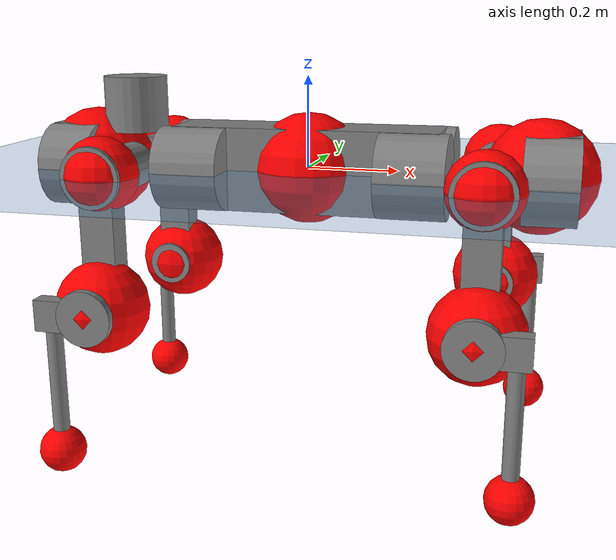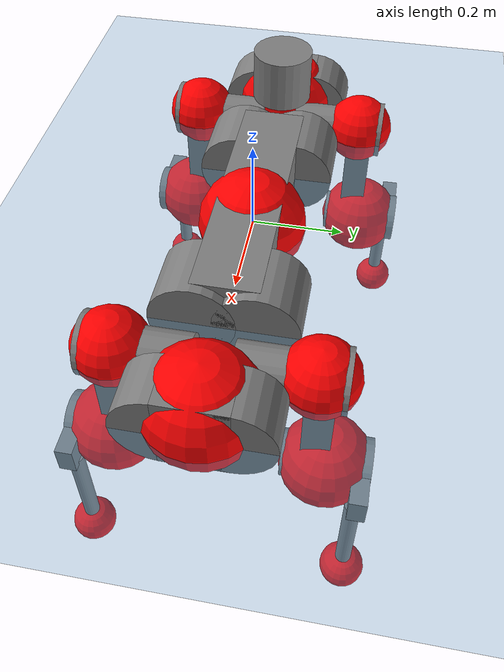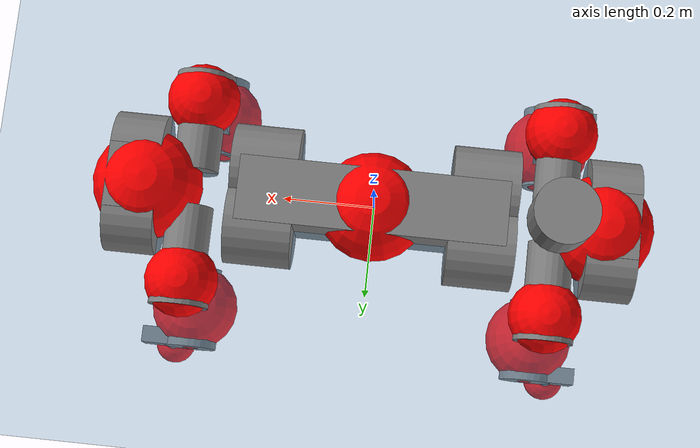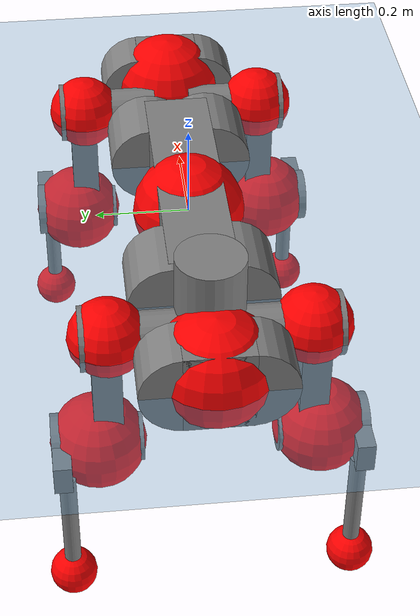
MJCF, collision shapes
<mujoco model="anymal_c">
  <compiler angle="radian" assetdir="assets" balanceinertia="true" inertiafromgeom="false"/>

  <option timestep="0.005" density="1.2" viscosity="2e-05"/>

  <size nkey="1"/>

  <visual>
    <quality shadowsize="8192"/>
    <map shadowclip="0.5"/>
  </visual>

  <default>
    <default class="/">
      <material specular="0" shininess="0.25"/>
      <geom contype="0" conaffinity="0" group="1" solref="-1000 -80"/>
      <site size="0.01 0.005 0.005" group="5"/>
      <general forcelimited="true" forcerange="-80 80" biastype="affine" gainprm="80" biasprm="0 -80 -2"/>
      <default class="anymal_c">
        <joint armature="0.01" damping="0.01" frictionloss="0.1"/>
        <default class="visual">
          <geom type="mesh" group="2"/>
          <default class="visual_zflip"/>
        </default>
        <default class="collision">
          <geom type="cylinder" group="3"/>
          <default class="foot">
            <geom size="0.03 0 0" type="sphere" condim="6" priority="1" friction="0.8 0.02 0.01" solimp="0.015 1 0.03"/>
          </default>
        </default>
      </default>
      <default class="reward_collision_sphere">
        <geom group="5" rgba="1 0 0 1"/>
      </default>
    </default>
  </default>

  <asset>
    <texture type="skybox" colorspace="auto" name="//unnamed_texture_0" builtin="gradient" rgb1="0.95 0.95 0.95" rgb2="0.95 0.95 0.95" width="100" height="600"/>
    <texture type="2d" colorspace="auto" name="texplane" builtin="checker" rgb1="0.345 0.575 0.748" rgb2="0.345 0.575 0.748" markrgb="1 1 1" width="512" height="512"/>
    <texture type="2d" colorspace="linear" name="base" file="base.png"/>
    <texture type="2d" colorspace="linear" name="top_shell" file="top_shell.png"/>
    <texture type="2d" colorspace="linear" name="bottom_shell" file="bottom_shell.png"/>
    <texture type="2d" colorspace="linear" name="remote" file="remote.png"/>
    <texture type="2d" colorspace="linear" name="hatch" file="hatch.png"/>
    <texture type="2d" colorspace="linear" name="handle" file="handle.png"/>
    <texture type="2d" colorspace="linear" name="face" file="face.png"/>
    <texture type="2d" colorspace="linear" name="battery" file="battery.png"/>
    <texture type="2d" colorspace="linear" name="lidar_cage" file="lidar_cage.png"/>
    <texture type="2d" colorspace="linear" name="depth_camera" file="depth_camera.png"/>
    <texture type="2d" colorspace="linear" name="wide_angle_camera" file="wide_angle_camera.png"/>
    <texture type="2d" colorspace="linear" name="lidar" file="lidar.png"/>
    <texture type="2d" colorspace="linear" name="drive" file="drive.png"/>
    <texture type="2d" colorspace="linear" name="hip_l" file="hip_l.png"/>
    <texture type="2d" colorspace="linear" name="shank_l" file="shank_l.png"/>
    <texture type="2d" colorspace="linear" name="foot" file="foot.png"/>
    <texture type="2d" colorspace="linear" name="thigh" file="thigh.png"/>
    <texture type="2d" colorspace="linear" name="shank_r" file="shank_r.png"/>
    <texture type="2d" colorspace="linear" name="hip_r" file="hip_r.png"/>
    <material name="MatPlane" class="/" texture="texplane" texuniform="true" texrepeat="2 2" specular="0.9" shininess="0.5"/>
    <material name="black_plastic" class="/" rgba="0.007 0.007 0.007 1"/>
    <material name="green" class="/" rgba="0.052 0.178 0.033 1"/>
    <material name="red" class="/" rgba="0.178 0.006 0.005 1"/>
    <material name="yellow" class="/" rgba="0.178 0.119 0.006 1"/>
    <material name="lwl" class="/" rgba="0.8 0.8 0.8 1"/>
    <material name="base" class="/" texture="base"/>
    <material name="top_shell" class="/" texture="top_shell"/>
    <material name="bottom_shell" class="/" texture="bottom_shell"/>
    <material name="hip_l" class="/" texture="hip_l"/>
    <material name="thigh" class="/" texture="thigh"/>
    <material name="shank_l" class="/" texture="shank_l"/>
    <material name="foot" class="/" texture="foot"/>
    <material name="hip_r" class="/" texture="hip_r"/>
    <material name="shank" class="/" texture="shank_r"/>
    <material name="hatch" class="/" texture="hatch"/>
    <material name="remote" class="/" texture="remote"/>
    <material name="handle" class="/" texture="handle"/>
    <material name="face" class="/" texture="face"/>
    <material name="depth_camera" class="/" texture="depth_camera"/>
    <material name="wide_angle_camera" class="/" texture="wide_angle_camera"/>
    <material name="battery" class="/" texture="battery"/>
    <material name="lidar_cage" class="/" texture="lidar_cage"/>
    <material name="lidar" class="/" texture="lidar"/>
    <material name="drive" class="/" texture="drive"/>
    <mesh name="base_0" class="/" file="base_0.obj"/>
    <mesh name="base_1" class="/" file="base_1.obj"/>
    <mesh name="base_2" class="/" file="base_2.obj"/>
    <mesh name="base_3" class="/" file="base_3.obj"/>
    <mesh name="base_4" class="/" file="base_4.obj"/>
    <mesh name="base_5" class="/" file="base_5.obj"/>
    <mesh name="top_shell" class="/" file="top_shell.obj"/>
    <mesh name="bottom_shell" class="/" file="bottom_shell.obj"/>
    <mesh name="remote" class="/" file="remote.obj"/>
    <mesh name="handle" class="/" file="handle.obj"/>
    <mesh name="face" class="/" file="face.obj"/>
    <mesh name="wide_angle_camera" class="/" file="wide_angle_camera.obj"/>
    <mesh name="depth_camera" class="/" file="depth_camera.obj"/>
    <mesh name="battery" class="/" file="battery.obj"/>
    <mesh name="lidar_cage" class="/" file="lidar_cage.obj"/>
    <mesh name="lidar" class="/" file="lidar.obj"/>
    <mesh name="drive" class="/" file="drive.obj"/>
    <mesh name="hip_l" class="/" file="hip_l.obj"/>
    <mesh name="thigh" class="/" file="thigh.obj"/>
    <mesh name="shank_l" class="/" file="shank_l.obj"/>
    <mesh name="foot" class="/" file="foot.obj"/>
    <mesh name="hip_r" class="/" file="hip_r.obj"/>
    <mesh name="hatch" class="/" file="hatch.obj"/>
    <mesh name="shank_r" class="/" file="shank_r.obj"/>
  </asset>

  <worldbody>
    <geom name="floor" class="/" size="100 100 0.125" type="plane" group="0" material="MatPlane"/>
    <light name="toplight_shadow" class="/" pos="0 0 5" dir="0.0990148 0.0990148 -0.990148" type="directional" ambient="0.04 0.04 0.04" diffuse="0.55 0.55 0.55" specular="0.12 0.12 0.12"/>
    <light name="toplight_fill" class="/" pos="0 0 5" dir="0.0990148 0.0990148 -0.990148" type="directional" castshadow="false" ambient="0.04 0.04 0.04" diffuse="0.3 0.3 0.3" specular="0.08 0.08 0.08"/>
    <body name="trunk" childclass="anymal_c" pos="0.00255247 -0.000552265 0.000324519" quat="0.999999 -0.00044028 -0.00109046 -0.000120608">
      <inertial pos="7.60082e-05 -0.000617126 0.0498991" quat="0.501303 0.500312 0.50051 0.497869" mass="19.0864" diaginertia="1.0741 0.442065 0.205942"/>
      <joint name="//unnamed_joint_0" type="free" armature="0" damping="0" frictionloss="0"/>
      <geom name="//unnamed_geom_1" class="visual" material="green" mesh="base_0"/>
      <geom name="//unnamed_geom_2" class="visual" material="yellow" mesh="base_1"/>
      <geom name="//unnamed_geom_3" class="visual" material="red" mesh="base_2"/>
      <geom name="//unnamed_geom_4" class="visual" material="black_plastic" mesh="base_3"/>
      <geom name="//unnamed_geom_5" class="visual" material="lwl" mesh="base_4"/>
      <geom name="//unnamed_geom_6" class="visual" material="base" mesh="base_5"/>
      <geom name="trunk_1" class="collision" size="0.293933 0.0709493 0.0912205" type="box"/>
      <geom name="trunk_2" class="collision" size="0.0912205 0.0734832" pos="0.241747 0.0654699 0" quat="0.707107 0 0.707107 0"/>
      <geom name="trunk_3" class="collision" size="0.0912205 0.0734832" pos="-0.241747 0.0654699 0" quat="0.707107 0 0.707107 0"/>
      <geom name="trunk_4" class="collision" size="0.0912205 0.0734832" pos="0.241747 -0.0654699 0" quat="0.707107 0 0.707107 0"/>
      <geom name="trunk_5" class="collision" size="0.0912205 0.0734832" pos="-0.241747 -0.0654699 0" quat="0.707107 0 0.707107 0"/>
      <geom name="//unnamed_geom_12" class="visual" material="top_shell" mesh="top_shell"/>
      <geom name="//unnamed_geom_13" class="visual" material="bottom_shell" mesh="bottom_shell"/>
      <geom name="//unnamed_geom_14" class="visual" material="remote" mesh="remote"/>
      <geom name="//unnamed_geom_15" class="visual" material="handle" mesh="handle"/>
      <geom name="//unnamed_geom_16" class="visual" pos="0.460708 0 0" quat="1 0 0 0" material="face" mesh="face"/>
      <geom name="trunk_6" class="collision" size="0.0557459 0.0709493 0.0912205" pos="0.52184 0 0" type="box"/>
      <geom name="//unnamed_geom_18" class="collision" size="0.0912205 0.0557459" pos="0.52184 0.0654699 0" quat="0.707107 0 0.707107 0"/>
      <geom name="//unnamed_geom_19" class="collision" size="0.0912205 0.0557459" pos="0.52184 -0.0654699 0" quat="0.707107 0 0.707107 0"/>
      <geom name="//unnamed_geom_20" class="visual" pos="0.51311 0 -0.028129" quat="0.965926 0 0.258819 0" material="depth_camera" mesh="depth_camera"/>
      <geom name="//unnamed_geom_21" class="visual" pos="0.570189 0 0.014879" material="wide_angle_camera" mesh="wide_angle_camera"/>
      <geom name="//unnamed_geom_22" class="visual_zflip" pos="-0.460708 0 0" quat="0 0 0 1" material="face" mesh="face"/>
      <geom name="trunk_7" class="collision" size="0.0557459 0.0709493 0.0912205" pos="-0.52184 0 0" quat="0 0 0 1" type="box"/>
      <geom name="//unnamed_geom_24" class="collision" size="0.0912205 0.0557459" pos="-0.52184 -0.0654699 0" quat="0 -0.707107 0 0.707107"/>
      <geom name="//unnamed_geom_25" class="collision" size="0.0912205 0.0557459" pos="-0.52184 0.0654699 0" quat="0 -0.707107 0 0.707107"/>
      <geom name="//unnamed_geom_26" class="visual" pos="-0.51311 0 -0.028129" quat="0 -0.258819 0 0.965926" material="depth_camera" mesh="depth_camera"/>
      <geom name="//unnamed_geom_27" class="visual_zflip" pos="-0.570189 0 0.014879" quat="0 0 0 1" material="wide_angle_camera" mesh="wide_angle_camera"/>
      <geom name="//unnamed_geom_28" class="visual" material="battery" mesh="battery"/>
      <geom name="//unnamed_geom_29" class="visual" pos="0 0.069195 0.0297668" quat="0.683013 -0.183013 0.183013 0.683013" material="depth_camera" mesh="depth_camera"/>
      <geom name="//unnamed_geom_30" class="visual" pos="0 -0.069195 0.0297668" quat="0.683013 0.183013 0.183013 -0.683013" material="depth_camera" mesh="depth_camera"/>
      <geom name="//unnamed_geom_31" class="visual" pos="-0.404578 0 0.0730531" quat="1 0 0 0" material="lidar_cage" mesh="lidar_cage"/>
      <geom name="trunk_8" class="collision" size="0.0709493 0.0608137" pos="-0.404578 0 0.132688"/>
      <geom name="//unnamed_geom_33" class="visual" pos="-0.404578 -6.92221e-05 0.141335" quat="0.707107 0 0 -0.707107" material="lidar" mesh="lidar"/>
      <geom name="//unnamed_geom_34" class="visual" pos="0.333333 0.0972904 -1.01147e-09" quat="0.258819 0.965926 0 0" material="drive" mesh="drive"/>
      <geom name="//unnamed_geom_35" class="visual" pos="0.333333 -0.0972904 1.01147e-09" quat="0.258819 -0.965926 0 0" material="drive" mesh="drive"/>
      <geom name="//unnamed_geom_36" class="visual" pos="-0.333333 0.0972904 1.01147e-09" quat="0 0 0.965926 -0.258819" material="drive" mesh="drive"/>
      <geom name="//unnamed_geom_37" class="visual" pos="-0.333333 -0.0972904 -1.01147e-09" quat="0 0 -0.965926 -0.258819" material="drive" mesh="drive"/>
      <geom name="//unnamed_geom_38" class="visual" pos="0.128932 0 0.0725562" quat="1 0 0 0" material="hatch" mesh="hatch"/>
      <geom name="//unnamed_geom_39" class="reward_collision_sphere" size="0.121627"/>
      <geom name="//unnamed_geom_40" class="reward_collision_sphere" size="0.121627" pos="0.500166 0 0"/>
      <geom name="//unnamed_geom_41" class="reward_collision_sphere" size="0.121627" pos="-0.500166 0 0"/>
      <site name="imu" pos="0.273952 0.00855609 0.0573267" size="0.0101356"/>
      <camera name="track" pos="0 -1.87057 0" quat="0.707107 0.707107 0 0" mode="trackcom"/>
      <camera name="ego_camera" pos="0.500166 0 -0.0397568" quat="-0.5 -0.5 0.5 0.5"/>
      <body name="LF_HIP" pos="0.333773 0.0985639 -0.000148194" quat="0.258925 0.965897 0.000119169 -0.000266498">
        <inertial pos="0.0620966 -0.0152496 -0.00806776" quat="-0.127316 0.71042 -0.133566 0.679157" mass="2.87776" diaginertia="0.0101497 0.00348319 0.00318666"/>
        <joint name="LF_HAA" pos="0 0 0" axis="0.999887 -0.00739957 -0.0130764" range="-0.668956 0.487387" armature="0.0100576" damping="0.00924556" frictionloss="0.102488"/>
        <geom name="//unnamed_geom_42" class="visual" pos="0 -5.95002e-05 9.77286e-06" quat="0.258819 -0.965926 0 0" material="hip_l" mesh="hip_l"/>
        <geom name="//unnamed_geom_43" class="visual" pos="0.0665776 -0.0783739 -0.0456829" quat="0.183013 -0.683013 0.683013 0.183013" material="drive" mesh="drive"/>
        <geom name="//unnamed_geom_44" class="collision" size="0.0506781 0.0709493" pos="0.0665776 -0.0111858 -0.00686302" quat="-0.353553 -0.612372 0.612372 -0.353553"/>
        <body name="LF_THIGH" pos="0.0668468 -0.067503 -0.0416773" quat="0.182736 -0.683514 0.682441 0.183549">
          <inertial pos="0.0358219 -0.000650576 -0.246503" quat="0.993133 -0.00519486 -0.0805763 0.0846542" mass="3.12082" diaginertia="0.0503112 0.0211732 0.00411782"/>
          <joint name="LF_HFE" pos="0 0 0" axis="0.999995 0.00274458 0.0016453" range="-3.15578 3.13424" armature="0.0104767" damping="0.00772336" frictionloss="0.10627"/>
          <geom name="//unnamed_geom_45" class="visual" pos="0.00350558 5.52397e-06 0" quat="0.707107 0 0 -0.707107" material="thigh" mesh="thigh"/>
          <geom name="//unnamed_geom_46" class="collision" size="0.0658815 0.0405425" pos="0.0444592 0 0" quat="0.5 0.5 -0.5 -0.5"/>
          <geom name="//unnamed_geom_47" class="collision" size="0.0380086 0.0304068 0.14323" pos="0.0333444 0 -0.140455" quat="0.707107 0 0 -0.707107" type="box"/>
          <geom name="//unnamed_geom_48" class="visual" pos="0.111481 0 -0.283267" quat="1 0 0 0" material="drive" mesh="drive"/>
          <geom name="//unnamed_geom_49" class="collision" size="0.0506781 0.0709493" pos="0.0336778 0 -0.283267" quat="0.707107 0 0.707107 0"/>
          <geom name="//unnamed_geom_50" class="reward_collision_sphere" size="0.0810849" pos="0.027787 0 0"/>
          <body name="LF_SHANK" pos="0.111444 -0.00273061 -0.283152" quat="1 -0.000216179 -0.00036162 -9.03732e-05">
            <inertial pos="0.0042236 -0.0570284 -0.07921" quat="0.99267 -0.117815 0.00208792 -0.0268699" mass="0.612087" diaginertia="0.0176938 0.00689004 0.00110584"/>
            <joint name="LF_KFE" pos="0 0 0" axis="0.999994 -0.0019948 -0.00275128" range="-3.18688 3.14933" armature="0.0101211" damping="0" frictionloss="0.101372"/>
            <geom name="//unnamed_geom_51" class="visual" pos="0.00114309 0.00609503 0" quat="0.707107 0 0 -0.707107" material="shank_l" mesh="shank_l"/>
            <geom name="LF_kfe_act" class="collision" size="0.0608137 0.0202712" pos="0.0222296 0 0" quat="0.5 0.5 -0.5 -0.5"/>
            <geom name="//unnamed_geom_53" class="collision" size="0.0582788 0.0342077 0.0192577" pos="0.0222296 -0.0537779 0" quat="0.5 0.5 -0.5 -0.5" type="box"/>
            <geom name="//unnamed_geom_54" class="visual" pos="0.0145045 -0.0802941 -0.335915" quat="0.382683 0 0 -0.92388" material="foot" mesh="foot"/>
            <geom name="LF_calf" class="collision" size="0.0177373 0.143168" pos="0.0145048 -0.0822583 -0.167958" quat="0.707107 0 0 -0.707107"/>
            <geom name="LF_foot" class="foot" size="0.0336897" pos="0.0145048 -0.0822583 -0.313552" quat="0.707107 0 0 -0.707107"/>
            <geom name="//unnamed_geom_57" class="reward_collision_sphere" size="0.101356" pos="-0.055574 0 0"/>
            <geom name="//unnamed_geom_58" class="reward_collision_sphere" size="0.0506781" pos="0.0145048 -0.0822583 -0.313552"/>
            <site name="LF_foot" class="foot" pos="0.0145048 -0.0822583 -0.313552" quat="0.707107 0 0 -0.707107" size="0.0101356"/>
          </body>
        </body>
      </body>
      <body name="RF_HIP" pos="0.333451 -0.0975205 -0.00219777" quat="0.259456 -0.965755 -0.00054885 -0.00048195">
        <inertial pos="0.0631287 0.0126777 -0.0085003" quat="0.136276 0.675429 0.120436 0.714647" mass="2.86729" diaginertia="0.0097234 0.00350718 0.00314829"/>
        <joint name="RF_HAA" pos="0 0 0" axis="0.999999 -0.00149718 -0.000804632" range="-0.512741 0.71892" armature="0.00964918" damping="0.0137464" frictionloss="0.0912402"/>
        <geom name="//unnamed_geom_59" class="visual" pos="0 5.94997e-05 9.77283e-06" quat="0.258819 0.965926 0 0" material="hip_r" mesh="hip_r"/>
        <geom name="//unnamed_geom_60" class="visual" pos="0.0665776 0.0783739 -0.0456829" quat="0.183013 0.683013 0.683013 -0.183013" material="drive" mesh="drive"/>
        <geom name="//unnamed_geom_61" class="collision" size="0.0506781 0.0709493" pos="0.0665776 0.0111858 -0.00686302" quat="-0.353553 0.612372 0.612372 0.353553"/>
        <body name="RF_THIGH" pos="0.0669166 0.0650356 -0.0419772" quat="0.183094 0.682904 0.68312 -0.182935">
          <inertial pos="0.0346017 -0.00161577 -0.24441" quat="0.992272 -0.00448593 -0.0838306 0.0913736" mass="3.2323" diaginertia="0.0511616 0.0217265 0.00416761"/>
          <joint name="RF_HFE" pos="0 0 0" axis="1 -0.000268699 8.90011e-05" range="-3.14071 3.17555" armature="0.0102125" damping="0.0137029" frictionloss="0.0987673"/>
          <geom name="//unnamed_geom_62" class="visual" pos="0.00350558 5.52397e-06 0" quat="0.707107 0 0 -0.707107" material="thigh" mesh="thigh"/>
          <geom name="//unnamed_geom_63" class="collision" size="0.0658815 0.0405425" pos="0.0444592 0 0" quat="0.5 0.5 0.5 0.5"/>
          <geom name="//unnamed_geom_64" class="collision" size="0.0380086 0.0304068 0.14323" pos="0.0333444 0 -0.140455" quat="0.707107 0 0 0.707107" type="box"/>
          <geom name="//unnamed_geom_65" class="visual" pos="0.111481 0 -0.283267" quat="1 0 0 0" material="drive" mesh="drive"/>
          <geom name="//unnamed_geom_66" class="collision" size="0.0506781 0.0709493" pos="0.0336778 0 -0.283267" quat="0.707107 0 0.707107 0"/>
          <geom name="//unnamed_geom_67" class="reward_collision_sphere" size="0.0810849" pos="0.027787 0 0"/>
          <body name="RF_SHANK" pos="0.111619 -0.00145897 -0.28248" quat="1 -9.06339e-08 -1.02067e-07 -2.37058e-07">
            <inertial pos="0.00644341 0.0578713 -0.0803157" quat="0.994174 0.105045 0.000342114 0.0241652" mass="0.608994" diaginertia="0.0172409 0.00659895 0.00106716"/>
            <joint name="RF_KFE" pos="0 0 0" axis="0.999972 -0.000219154 -0.00751782" range="-3.12773 3.15946" armature="0.010617" damping="0.0164549" frictionloss="0.105076"/>
            <geom name="//unnamed_geom_68" class="visual" pos="0.00114309 -0.00609502 0" quat="0.707107 0 0 0.707107" material="shank" mesh="shank_r"/>
            <geom name="RF_kfe_act" class="collision" size="0.0608137 0.0202712" pos="0.0222296 0 0" quat="0.5 0.5 0.5 0.5"/>
            <geom name="//unnamed_geom_70" class="collision" size="0.0582788 0.0342077 0.0192577" pos="0.0222296 0.0537779 0" quat="0.5 0.5 0.5 0.5" type="box"/>
            <geom name="//unnamed_geom_71" class="visual" pos="0.0145051 0.0802941 -0.335915" quat="0.382683 0 0 0.92388" material="foot" mesh="foot"/>
            <geom name="RF_calf" class="collision" size="0.0177373 0.143168" pos="0.0145048 0.0822583 -0.167958" quat="0.707107 0 0 0.707107"/>
            <geom name="RF_foot" class="foot" size="0.0285139" pos="0.0145048 0.0822583 -0.313552" quat="0.707107 0 0 0.707107"/>
            <geom name="//unnamed_geom_74" class="reward_collision_sphere" size="0.101356" pos="-0.055574 0 0"/>
            <geom name="//unnamed_geom_75" class="reward_collision_sphere" size="0.0506781" pos="0.0145048 0.0822583 -0.313552"/>
            <site name="RF_foot" class="foot" pos="0.0145048 0.0822583 -0.313552" quat="0.707107 0 0 0.707107" size="0.0101356"/>
          </body>
        </body>
      </body>
      <body name="LH_HIP" pos="-0.332505 0.0976285 -0.000142084" quat="1.44587e-05 -3.76191e-07 0.965904 -0.2589">
        <inertial pos="0.0622903 0.0164894 -0.00973699" quat="0.144709 0.683165 0.131931 0.703519" mass="2.9539" diaginertia="0.00990222 0.00348606 0.00325154"/>
        <joint name="LH_HAA" pos="0 0 0" axis="0.999997 0.00064968 0.00227412" range="-0.490884 0.715197" armature="0.00925106" damping="0.0156537" frictionloss="0.112615"/>
        <geom name="//unnamed_geom_76" class="visual" pos="0 5.94997e-05 9.77283e-06" quat="-0.258819 -0.965926 0 0" material="hip_r" mesh="hip_r"/>
        <geom name="//unnamed_geom_77" class="visual" pos="0.0665776 0.0783739 -0.0456829" quat="0.183013 0.683013 0.683013 -0.183013" material="drive" mesh="drive"/>
        <geom name="//unnamed_geom_78" class="collision" size="0.0506781 0.0709493" pos="0.0665776 0.0111858 -0.00686302" quat="-0.353553 0.612372 0.612372 0.353553"/>
        <body name="LH_THIGH" pos="0.065696 0.0654499 -0.0405478" quat="0.18301 0.683015 0.68301 -0.183018">
          <inertial pos="0.0341585 -0.000202489 -0.244402" quat="0.992512 -0.00128647 -0.0811389 0.0912898" mass="3.25288" diaginertia="0.0509034 0.021021 0.00404966"/>
          <joint name="LH_HFE" pos="0 0 0" axis="0.999999 -0.001304 0.000337418" stiffness="0.00091008" range="-3.13161 3.15127" armature="0.0108528" damping="0.00734024" frictionloss="0.101997"/>
          <geom name="//unnamed_geom_79" class="visual" pos="0.00350558 5.52397e-06 0" quat="0.707107 0 0 -0.707107" material="thigh" mesh="thigh"/>
          <geom name="//unnamed_geom_80" class="collision" size="0.0658815 0.0405425" pos="0.0444592 0 0" quat="0.5 0.5 -0.5 -0.5"/>
          <geom name="//unnamed_geom_81" class="collision" size="0.0380086 0.0304068 0.14323" pos="0.0333444 0 -0.140455" quat="0.707107 0 0 -0.707107" type="box"/>
          <geom name="//unnamed_geom_82" class="visual" pos="0.111481 0 -0.283267" quat="1 0 0 0" material="drive" mesh="drive"/>
          <geom name="//unnamed_geom_83" class="collision" size="0.0506781 0.0709493" pos="0.0336778 0 -0.283267" quat="0.707107 0 0.707107 0"/>
          <geom name="//unnamed_geom_84" class="reward_collision_sphere" size="0.0810849" pos="0.027787 0 0"/>
          <body name="LH_SHANK" pos="0.111638 -0.0010784 -0.285277" quat="1 -0.000177457 0.00017998 0.000154858">
            <inertial pos="0.00705884 0.0596795 -0.0795691" quat="0.992952 0.115752 -0.00109345 0.0254304" mass="0.604545" diaginertia="0.0169919 0.00657138 0.00103814"/>
            <joint name="LH_KFE" pos="0 0 0" axis="0.99999 -0.00394999 0.00194011" range="-3.1476 3.13076" armature="0.0102639" damping="0.0038926" frictionloss="0.113955"/>
            <geom name="//unnamed_geom_85" class="visual" pos="0.00114309 -0.00609502 0" quat="-0.707107 0 0 -0.707107" material="shank" mesh="shank_r"/>
            <geom name="LH_kfe_act" class="collision" size="0.0608137 0.0202712" pos="0.0222296 0 0" quat="0.5 0.5 -0.5 -0.5"/>
            <geom name="//unnamed_geom_87" class="collision" size="0.0582788 0.0342077 0.0192577" pos="0.0222296 0.0537779 0" quat="0.5 0.5 -0.5 -0.5" type="box"/>
            <geom name="//unnamed_geom_88" class="visual" pos="0.0145051 0.0802941 -0.335915" quat="-0.382683 0 0 -0.92388" material="foot" mesh="foot"/>
            <geom name="LH_calf" class="collision" size="0.0177373 0.143168" pos="0.0145048 0.0822583 -0.167958" quat="0.707107 0 0 -0.707107"/>
            <geom name="LH_foot" class="foot" size="0.031755" pos="0.0145048 0.0822583 -0.313552" quat="0.707107 0 0 -0.707107"/>
            <geom name="//unnamed_geom_91" class="reward_collision_sphere" size="0.101356" pos="-0.055574 0 0"/>
            <geom name="//unnamed_geom_92" class="reward_collision_sphere" size="0.0506781" pos="0.0145048 0.0822583 -0.313552"/>
            <site name="LH_foot" class="foot" pos="0.0145048 0.0822583 -0.313552" quat="0.707107 0 0 -0.707107" size="0.0101356"/>
          </body>
        </body>
      </body>
      <body name="RH_HIP" pos="-0.334266 -0.0978742 -0.000932183" quat="0.000225532 -0.000973354 -0.965732 -0.259538">
        <inertial pos="0.0654798 -0.0130428 -0.010975" quat="-0.123791 0.710039 -0.131631 0.680583" mass="2.9" diaginertia="0.00998579 0.00351947 0.00318101"/>
        <joint name="RH_HAA" pos="0 0 0" axis="0.999904 0.0138225 0.000797146" range="-0.742593 0.486048" armature="0.0102694" damping="0.0108606" frictionloss="0.0985438"/>
        <geom name="//unnamed_geom_93" class="visual" pos="0 -5.95002e-05 9.77286e-06" quat="-0.258819 0.965926 0 0" material="hip_l" mesh="hip_l"/>
        <geom name="//unnamed_geom_94" class="visual" pos="0.0665776 -0.0783739 -0.0456829" quat="-0.183013 0.683013 -0.683013 -0.183013" material="drive" mesh="drive"/>
        <geom name="//unnamed_geom_95" class="collision" size="0.0506781 0.0709493" pos="0.0665776 -0.0111858 -0.00686302" quat="0.353553 0.612372 -0.612372 0.353553"/>
        <body name="RH_THIGH" pos="0.0673895 -0.0688416 -0.0443652" quat="-0.183045 0.683047 -0.682988 -0.182946">
          <inertial pos="0.0342058 -9.85306e-05 -0.244125" quat="0.993081 -0.00613274 -0.08029 0.0854742" mass="3.11378" diaginertia="0.0515 0.0216086 0.00406128"/>
          <joint name="RH_HFE" pos="0 0 0" axis="0.999998 0.00102674 0.0017618" range="-3.143 3.18684" armature="0.00994632" damping="0.00729196" frictionloss="0.0983887"/>
          <geom name="//unnamed_geom_96" class="visual" pos="0.00350558 5.52397e-06 0" quat="0.707107 0 0 -0.707107" material="thigh" mesh="thigh"/>
          <geom name="//unnamed_geom_97" class="collision" size="0.0658815 0.0405425" pos="0.0444592 0 0" quat="0.5 0.5 0.5 0.5"/>
          <geom name="//unnamed_geom_98" class="collision" size="0.0380086 0.0304068 0.14323" pos="0.0333444 0 -0.140455" quat="0.707107 0 0 0.707107" type="box"/>
          <geom name="//unnamed_geom_99" class="visual" pos="0.111481 0 -0.283267" quat="1 0 0 0" material="drive" mesh="drive"/>
          <geom name="//unnamed_geom_100" class="collision" size="0.0506781 0.0709493" pos="0.0336778 0 -0.283267" quat="0.707107 0 0.707107 0"/>
          <geom name="//unnamed_geom_101" class="reward_collision_sphere" size="0.0810849" pos="0.027787 0 0"/>
          <body name="RH_SHANK" pos="0.111625 0.000634828 -0.282936" quat="1 1.92338e-05 -6.71977e-05 -1.48796e-05">
            <inertial pos="0.00486628 -0.057229 -0.0802533" quat="0.992928 -0.115829 -0.000786723 -0.0260339" mass="0.606746" diaginertia="0.0170097 0.00659492 0.00110746"/>
            <joint name="RH_KFE" pos="0 0 0" axis="0.999903 -0.0138754 0.000696648" range="-3.11137 3.14248" armature="0.0106831" damping="0.0185874" frictionloss="0.106535"/>
            <geom name="//unnamed_geom_102" class="visual" pos="0.00114309 0.00609503 0" quat="0.707107 0 0 -0.707107" material="shank_l" mesh="shank_l"/>
            <geom name="RH_kfe_act" class="collision" size="0.0608137 0.0202712" pos="0.0222296 0 0" quat="0.5 0.5 0.5 0.5"/>
            <geom name="//unnamed_geom_104" class="collision" size="0.0582788 0.0342077 0.0192577" pos="0.0222296 -0.0537779 0" quat="0.5 0.5 0.5 0.5" type="box"/>
            <geom name="//unnamed_geom_105" class="visual" pos="0.0145045 -0.0802941 -0.335915" quat="0.382683 0 0 -0.92388" material="foot" mesh="foot"/>
            <geom name="RH_calf" class="collision" size="0.0177373 0.143168" pos="0.0145048 -0.0822583 -0.167958" quat="0.707107 0 0 0.707107"/>
            <geom name="RH_foot" class="foot" size="0.0273684" pos="0.0145048 -0.0822583 -0.313552" quat="0.707107 0 0 0.707107"/>
            <geom name="//unnamed_geom_108" class="reward_collision_sphere" size="0.101356" pos="-0.055574 0 0"/>
            <geom name="//unnamed_geom_109" class="reward_collision_sphere" size="0.0506781" pos="0.0145048 -0.0822583 -0.313552"/>
            <site name="RH_foot" class="foot" pos="0.0145048 -0.0822583 -0.313552" quat="0.707107 0 0 0.707107" size="0.0101356"/>
          </body>
        </body>
      </body>
    </body>
  </worldbody>

  <contact>
    <pair class="/" geom1="floor" geom2="LF_foot" name="//unnamed_contact_0"/>
    <pair class="/" geom1="floor" geom2="RF_foot" name="//unnamed_contact_1"/>
    <pair class="/" geom1="floor" geom2="LH_foot" name="//unnamed_contact_2"/>
    <pair class="/" geom1="floor" geom2="RH_foot" name="//unnamed_contact_3"/>
  </contact>

  <actuator>
    <general name="LF_HAA" class="/" joint="LF_HAA" forcerange="-81.2713 81.2713" gainprm="80.3304" biasprm="0 -80.3304 -1.96164"/>
    <general name="LF_HFE" class="/" joint="LF_HFE" forcerange="-81.1016 81.1016" gainprm="80.3304" biasprm="0 -80.3304 -1.96164"/>
    <general name="LF_KFE" class="/" joint="LF_KFE" forcerange="-80.0973 80.0973" gainprm="80.3304" biasprm="0 -80.3304 -1.96164"/>
    <general name="RF_HAA" class="/" joint="RF_HAA" forcerange="-82.0245 82.0245" gainprm="80.3304" biasprm="0 -80.3304 -1.96164"/>
    <general name="RF_HFE" class="/" joint="RF_HFE" forcerange="-83.6577 83.6577" gainprm="80.3304" biasprm="0 -80.3304 -1.96164"/>
    <general name="RF_KFE" class="/" joint="RF_KFE" forcerange="-80.8748 80.8748" gainprm="80.3304" biasprm="0 -80.3304 -1.96164"/>
    <general name="LH_HAA" class="/" joint="LH_HAA" forcerange="-89.1489 89.1489" gainprm="80.3304" biasprm="0 -80.3304 -1.96164"/>
    <general name="LH_HFE" class="/" joint="LH_HFE" forcerange="-82.7164 82.7164" gainprm="80.3304" biasprm="0 -80.3304 -1.96164"/>
    <general name="LH_KFE" class="/" joint="LH_KFE" forcerange="-74.7959 74.7959" gainprm="80.3304" biasprm="0 -80.3304 -1.96164"/>
    <general name="RH_HAA" class="/" joint="RH_HAA" forcerange="-79.3454 79.3454" gainprm="80.3304" biasprm="0 -80.3304 -1.96164"/>
    <general name="RH_HFE" class="/" joint="RH_HFE" forcerange="-88.8777 88.8777" gainprm="80.3304" biasprm="0 -80.3304 -1.96164"/>
    <general name="RH_KFE" class="/" joint="RH_KFE" forcerange="-81.1078 81.1078" gainprm="80.3304" biasprm="0 -80.3304 -1.96164"/>
  </actuator>

  <sensor>
    <gyro site="imu" name="imu_angular_velocity"/>
    <velocimeter site="imu" name="imu_linear_velocity"/>
    <framelinvel objtype="site" objname="LF_foot" name="LF_foot_global_linear_velocity"/>
    <framelinvel objtype="site" objname="RF_foot" name="RF_foot_global_linear_velocity"/>
    <framelinvel objtype="site" objname="LH_foot" name="LH_foot_global_linear_velocity"/>
    <framelinvel objtype="site" objname="RH_foot" name="RH_foot_global_linear_velocity"/>
  </sensor>

  <keyframe>
    <key name="home" qpos="0 0 0.55 1 0 0 0 0 0.4 -0.8 0 -0.4 0.8 0 -0.4 0.8 0 0.4 -0.8"/>
  </keyframe>
</mujoco>
